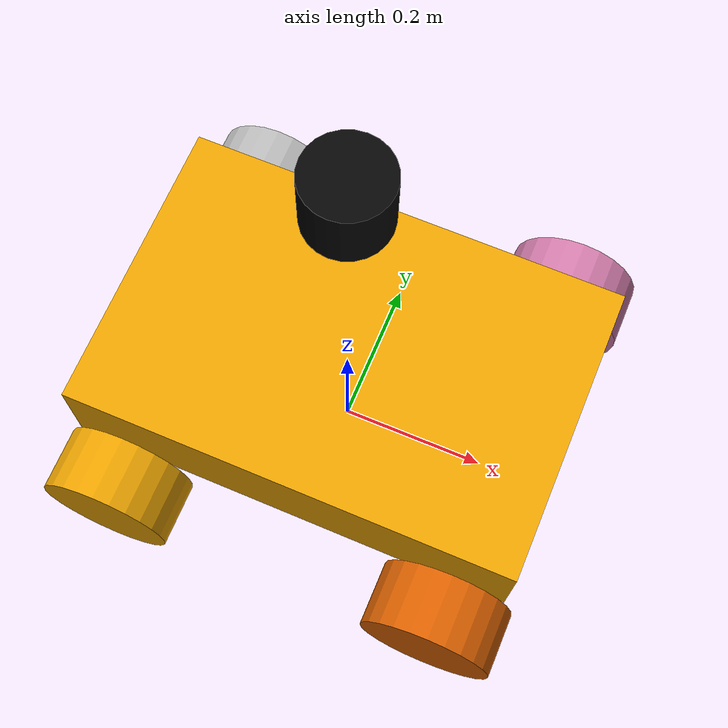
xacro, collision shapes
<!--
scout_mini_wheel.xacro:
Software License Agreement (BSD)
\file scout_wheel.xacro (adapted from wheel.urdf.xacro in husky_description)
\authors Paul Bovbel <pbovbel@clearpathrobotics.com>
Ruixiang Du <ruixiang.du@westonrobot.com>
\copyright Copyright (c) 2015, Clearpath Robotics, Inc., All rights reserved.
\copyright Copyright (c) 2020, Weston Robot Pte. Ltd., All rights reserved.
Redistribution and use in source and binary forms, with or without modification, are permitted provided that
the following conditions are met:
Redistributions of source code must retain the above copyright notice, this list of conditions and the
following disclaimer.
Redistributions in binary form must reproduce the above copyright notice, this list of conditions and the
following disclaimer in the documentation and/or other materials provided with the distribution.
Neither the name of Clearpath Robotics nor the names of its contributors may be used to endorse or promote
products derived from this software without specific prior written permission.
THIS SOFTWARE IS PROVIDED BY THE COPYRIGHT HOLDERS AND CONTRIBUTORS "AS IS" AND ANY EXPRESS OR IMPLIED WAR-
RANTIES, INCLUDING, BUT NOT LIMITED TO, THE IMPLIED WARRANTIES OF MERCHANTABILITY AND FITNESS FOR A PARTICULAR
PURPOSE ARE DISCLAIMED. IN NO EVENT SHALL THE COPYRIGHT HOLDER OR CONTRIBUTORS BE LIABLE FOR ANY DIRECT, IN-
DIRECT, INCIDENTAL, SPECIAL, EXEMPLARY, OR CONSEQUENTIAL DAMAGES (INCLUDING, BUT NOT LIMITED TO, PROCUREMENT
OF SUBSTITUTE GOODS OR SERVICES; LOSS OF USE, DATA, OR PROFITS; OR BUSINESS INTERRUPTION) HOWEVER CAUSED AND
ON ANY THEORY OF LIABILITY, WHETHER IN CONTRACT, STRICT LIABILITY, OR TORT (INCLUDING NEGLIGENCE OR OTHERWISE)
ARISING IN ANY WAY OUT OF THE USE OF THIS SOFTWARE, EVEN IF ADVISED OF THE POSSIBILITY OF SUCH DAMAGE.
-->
<?xml version="1.0"?>

<robot name="scout_mini" xmlns:xacro="http://ros.org/wiki/xacro">

    <xacro:arg name="robot_namespace" default="/" />

    <xacro:include filename="$(find scout_description)/urdf/scout_mini/scout_mini_wheel.xacro" />

    <xacro:property name="M_PI" value="3.14159"/>

    <xacro:property name="base_x_size" value="0.595000" />
    <xacro:property name="base_y_size" value="0.395000" />
    <xacro:property name="base_z_size" value="0.130000" />

    <xacro:property name="wheelbase" value="0.452" />
    <xacro:property name="track" value="0.49" />
    <xacro:property name="wheel_vertical_offset" value="-0.0905" />

    <xacro:property name="wheel_length" value="0.08520" />
    <xacro:property name="wheel_radius" value="0.08750" />

    <link name="base_link">
        <visual>
            <origin xyz="0 0 0" rpy="0 0 0" />
            <geometry>
                <mesh filename="package://scout_description/meshes/scout_mini/mini_base_link.dae" />
            </geometry>
        </visual>

        <collision>
            <origin xyz="0 0 0.008" rpy="0 0 0" />
            <geometry>
                <box size="${base_x_size} ${base_y_size} ${base_z_size}"/>
            </geometry>
        </collision>
    </link>

    <link name="base_footprint"/>

    <joint name="base_footprint_joint" type="fixed">
        <origin xyz="0 0 ${wheel_radius - wheel_vertical_offset}" rpy="0 0 0" />
        <parent link="base_footprint" />
        <child link="base_link" />
    </joint>

    <link name="inertial_link">
        <inertial>
            <mass value="18" />
            <origin xyz="0.0 0.0 0.0" />
            <inertia ixx="2.288641" ixy="0" ixz="0" iyy="5.103976" iyz="0" izz="3.431465" />
        </inertial>
    </link>

    <joint name="inertial_joint" type="fixed">
        <origin xyz="0 0 0" rpy="0 0 0" />
        <parent link="base_link" />
        <child link="inertial_link" />
    </joint>

    <link name="velodyne_link">
        <visual>
            <origin xyz="0 0 0" rpy="0 0 0"/>
            <geometry>
                <cylinder radius="0.05" length="0.08"/>
            </geometry>
            <material name="velodyne_black">
                <color rgba="0.02 0.02 0.02 1.0"/>
            </material>
        </visual>

        <collision>
            <origin xyz="0 0 0" rpy="0 0 0"/>
            <geometry>
                <cylinder radius="0.05" length="0.08"/>
            </geometry>
        </collision>
    </link>

    <joint name="velodyne_joint" type="fixed">
        <origin xyz="0.0 0.0 0.45" rpy="0 0 0"/>
        <parent link="base_link"/>
        <child link="velodyne_link"/>
    </joint>

    <link name="camera_link">
        <visual>
            <origin xyz="0 0 0" rpy="0 0 1.5708"/>
            <geometry>
                <box size="0.09 0.025 0.025"/>
            </geometry>
            <material name="camera_gray">
                <color rgba="0.3 0.3 0.3 1.0"/>
            </material>
        </visual>

        <collision>
            <origin xyz="0 0 0" rpy="0 0 1.5708"/>
            <geometry>
                <box size="0.09 0.025 0.025"/>
            </geometry>
        </collision>
    </link>

    <joint name="camera_joint" type="fixed">
        <origin xyz="0.24 0 0.04" rpy="0 0 0"/>
        <parent link="base_link"/>
        <child link="camera_link"/>
    </joint>

    <xacro:scout_mini_wheel wheel_prefix="front_right">
        <origin xyz="${wheelbase/2} ${-track/2} ${wheel_vertical_offset}" rpy="3.14 0 0" />
    </xacro:scout_mini_wheel>

    <xacro:scout_mini_wheel wheel_prefix="front_left">
        <origin xyz="${wheelbase/2} ${track/2} ${wheel_vertical_offset}" rpy="0 0 0" />
    </xacro:scout_mini_wheel>

    <xacro:scout_mini_wheel wheel_prefix="rear_left">
        <origin xyz="${-wheelbase/2} ${track/2} ${wheel_vertical_offset}" rpy="0 0 0" />
    </xacro:scout_mini_wheel>

    <xacro:scout_mini_wheel wheel_prefix="rear_right">
        <origin xyz="${-wheelbase/2} ${-track/2} ${wheel_vertical_offset}" rpy="3.14 0 0" />
    </xacro:scout_mini_wheel>

</robot>

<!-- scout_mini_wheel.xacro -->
<robot xmlns:xacro="http://ros.org/wiki/xacro" name="scout_mini_wheel">

    <xacro:macro name="scout_mini_wheel" params="wheel_prefix *joint_pose">
        <link name="${wheel_prefix}_wheel_link">
            <inertial>
                <mass value="1" />
                <origin xyz="0 0 0" />
                <inertia ixx="0.7171" ixy="0" ixz="0" iyy="0.1361" iyz="0" izz="0.7171" />
            </inertial>
            <visual>
                <!--origin xyz="0 0 0" rpy="0 0 0" /-->
                <origin xyz="${-0.452/2 + 0.005} ${-0.49/2 + 0.02} 0.0925" rpy="0 0 0" />
                <geometry>
                    <mesh filename="package://scout_description/meshes/scout_mini/mini_wheel.dae" />
                </geometry>
            </visual>
            <collision>
                <origin xyz="0 0 0" rpy="${M_PI/2} 0 0" />
                <geometry>
                    <cylinder length="${wheel_length}" radius="${wheel_radius}" />
                </geometry>
            </collision>
        </link>

        <joint name="${wheel_prefix}_wheel" type="continuous">
            <parent link="base_link"/>
            <child link="${wheel_prefix}_wheel_link"/>
            <xacro:insert_block name="joint_pose"/>
            <axis xyz="0 -1 0" rpy="0 0 0" />
        </joint>
    </xacro:macro>

</robot>
